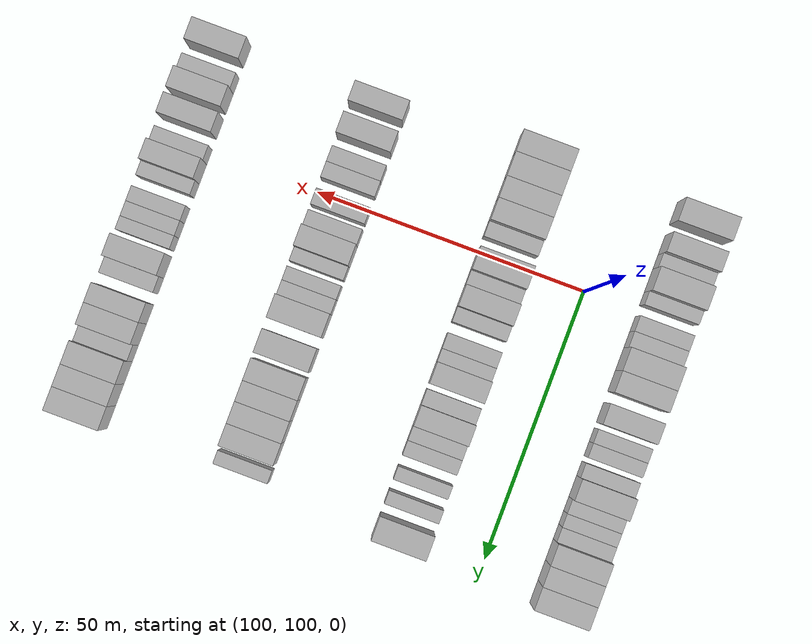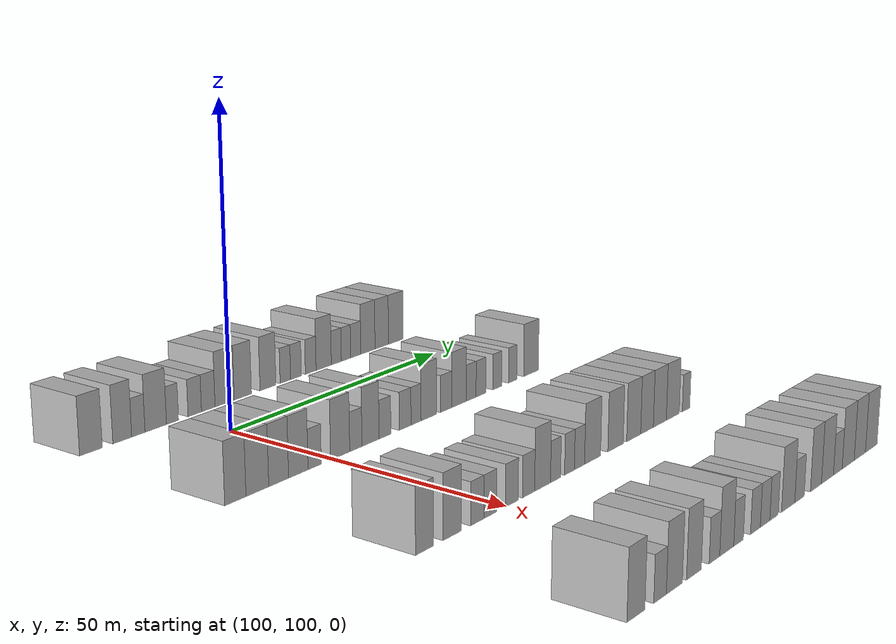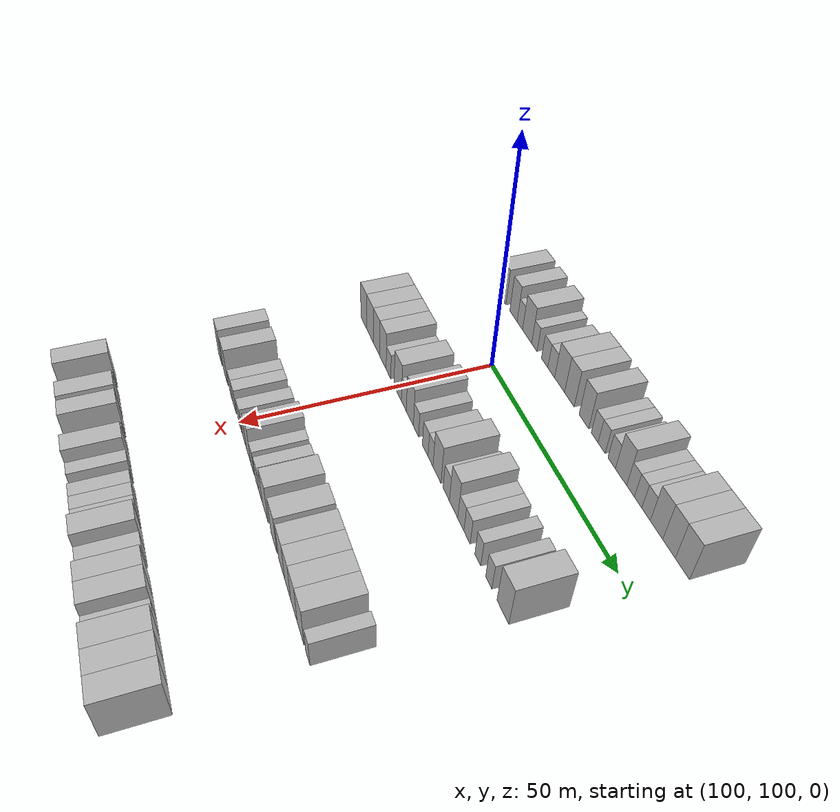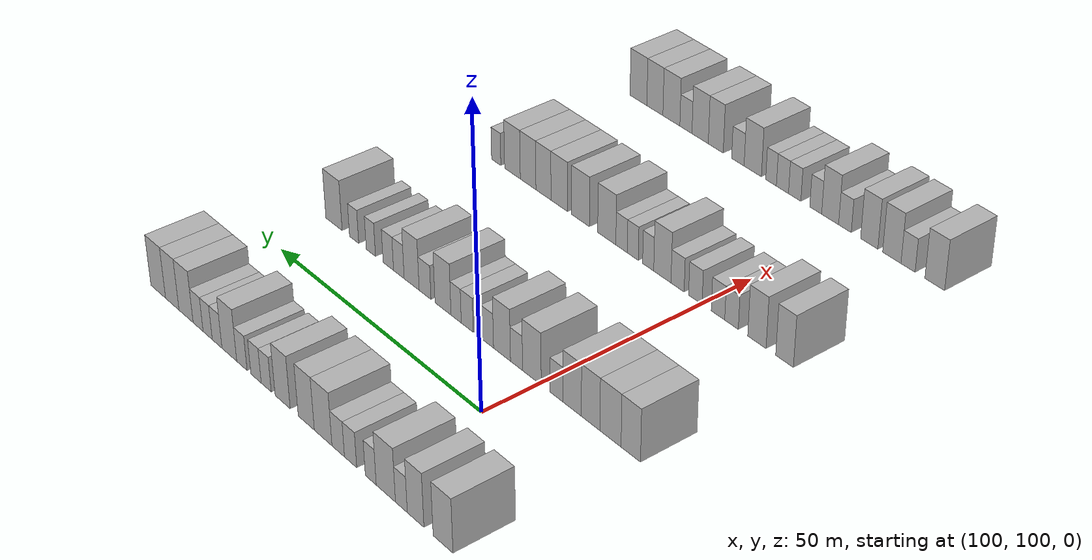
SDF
<sdf version="1.6">
 <world name="default">
  <model name="building_598">
   <static>1</static>
   <pose>85.0000 81.5797 0 0.000000 0.000000 0.000000</pose>
   <link name="link">
    <pose>0 0 4.50 0 0 0</pose>
    <collision name="collision"><geometry><box><size>10.0000 4.2613 9.0000</size></box></geometry></collision>
    <visual name="visual">
     <cast_shadows>0</cast_shadows>
     <geometry><box><size>10.0000 4.2613 9.0000</size></box></geometry>
     <material>
      <script>
       <uri>model://HANNAS_wall/materials/scripts</uri>
       <uri>model://HANNAS_wall/materials/textures</uri>
       <name>vrc/HANNAS_wall</name>
      </script>
     </material>
    </visual>
   </link>
  </model>
  <model name="building_599">
   <static>1</static>
   <pose>85.0000 87.5452 0 0.000000 0.000000 0.000000</pose>
   <link name="link">
    <pose>0 0 4.50 0 0 0</pose>
    <collision name="collision"><geometry><box><size>10.0000 3.6697 9.0000</size></box></geometry></collision>
    <visual name="visual">
     <cast_shadows>0</cast_shadows>
     <geometry><box><size>10.0000 3.6697 9.0000</size></box></geometry>
     <material>
      <script>
       <uri>model://HANNAS_wall/materials/scripts</uri>
       <uri>model://HANNAS_wall/materials/textures</uri>
       <name>vrc/HANNAS_wall</name>
      </script>
     </material>
    </visual>
   </link>
  </model>
  <model name="building_600">
   <static>1</static>
   <pose>85.0000 90.7050 0 0.000000 0.000000 0.000000</pose>
   <link name="link">
    <pose>0 0 3.00 0 0 0</pose>
    <collision name="collision"><geometry><box><size>10.0000 2.6497 6.0000</size></box></geometry></collision>
    <visual name="visual">
     <cast_shadows>0</cast_shadows>
     <geometry><box><size>10.0000 2.6497 6.0000</size></box></geometry>
     <material>
      <script>
       <uri>model://HANNAS_wall/materials/scripts</uri>
       <uri>model://HANNAS_wall/materials/textures</uri>
       <name>vrc/HANNAS_wall</name>
      </script>
     </material>
    </visual>
   </link>
  </model>
  <model name="building_601">
   <static>1</static>
   <pose>85.0000 94.2126 0 0.000000 0.000000 0.000000</pose>
   <link name="link">
    <pose>0 0 4.50 0 0 0</pose>
    <collision name="collision"><geometry><box><size>10.0000 4.3655 9.0000</size></box></geometry></collision>
    <visual name="visual">
     <cast_shadows>0</cast_shadows>
     <geometry><box><size>10.0000 4.3655 9.0000</size></box></geometry>
     <material>
      <script>
       <uri>model://HANNAS_wall/materials/scripts</uri>
       <uri>model://HANNAS_wall/materials/textures</uri>
       <name>vrc/HANNAS_wall</name>
      </script>
     </material>
    </visual>
   </link>
  </model>
  <model name="building_602">
   <static>1</static>
   <pose>85.0000 97.6465 0 0.000000 0.000000 0.000000</pose>
   <link name="link">
    <pose>0 0 3.00 0 0 0</pose>
    <collision name="collision"><geometry><box><size>10.0000 2.5023 6.0000</size></box></geometry></collision>
    <visual name="visual">
     <cast_shadows>0</cast_shadows>
     <geometry><box><size>10.0000 2.5023 6.0000</size></box></geometry>
     <material>
      <script>
       <uri>model://HANNAS_wall/materials/scripts</uri>
       <uri>model://HANNAS_wall/materials/textures</uri>
       <name>vrc/HANNAS_wall</name>
      </script>
     </material>
    </visual>
   </link>
  </model>
  <model name="building_603">
   <static>1</static>
   <pose>85.0000 102.3369 0 0.000000 0.000000 0.000000</pose>
   <link name="link">
    <pose>0 0 3.00 0 0 0</pose>
    <collision name="collision"><geometry><box><size>10.0000 2.8786 6.0000</size></box></geometry></collision>
    <visual name="visual">
     <cast_shadows>0</cast_shadows>
     <geometry><box><size>10.0000 2.8786 6.0000</size></box></geometry>
     <material>
      <script>
       <uri>model://HANNAS_wall/materials/scripts</uri>
       <uri>model://HANNAS_wall/materials/textures</uri>
       <name>vrc/HANNAS_wall</name>
      </script>
     </material>
    </visual>
   </link>
  </model>
  <model name="building_604">
   <static>1</static>
   <pose>85.0000 105.2574 0 0.000000 0.000000 0.000000</pose>
   <link name="link">
    <pose>0 0 3.00 0 0 0</pose>
    <collision name="collision"><geometry><box><size>10.0000 2.9626 6.0000</size></box></geometry></collision>
    <visual name="visual">
     <cast_shadows>0</cast_shadows>
     <geometry><box><size>10.0000 2.9626 6.0000</size></box></geometry>
     <material>
      <script>
       <uri>model://HANNAS_wall/materials/scripts</uri>
       <uri>model://HANNAS_wall/materials/textures</uri>
       <name>vrc/HANNAS_wall</name>
      </script>
     </material>
    </visual>
   </link>
  </model>
  <model name="building_605">
   <static>1</static>
   <pose>85.0000 108.8717 0 0.000000 0.000000 0.000000</pose>
   <link name="link">
    <pose>0 0 4.50 0 0 0</pose>
    <collision name="collision"><geometry><box><size>10.0000 4.2658 9.0000</size></box></geometry></collision>
    <visual name="visual">
     <cast_shadows>0</cast_shadows>
     <geometry><box><size>10.0000 4.2658 9.0000</size></box></geometry>
     <material>
      <script>
       <uri>model://HANNAS_wall/materials/scripts</uri>
       <uri>model://HANNAS_wall/materials/textures</uri>
       <name>vrc/HANNAS_wall</name>
      </script>
     </material>
    </visual>
   </link>
  </model>
  <model name="building_606">
   <static>1</static>
   <pose>85.0000 112.9769 0 0.000000 0.000000 0.000000</pose>
   <link name="link">
    <pose>0 0 4.50 0 0 0</pose>
    <collision name="collision"><geometry><box><size>10.0000 3.9446 9.0000</size></box></geometry></collision>
    <visual name="visual">
     <cast_shadows>0</cast_shadows>
     <geometry><box><size>10.0000 3.9446 9.0000</size></box></geometry>
     <material>
      <script>
       <uri>model://HANNAS_wall/materials/scripts</uri>
       <uri>model://HANNAS_wall/materials/textures</uri>
       <name>vrc/HANNAS_wall</name>
      </script>
     </material>
    </visual>
   </link>
  </model>
  <model name="building_607">
   <static>1</static>
   <pose>85.0000 118.8368 0 0.000000 0.000000 0.000000</pose>
   <link name="link">
    <pose>0 0 4.50 0 0 0</pose>
    <collision name="collision"><geometry><box><size>10.0000 3.7753 9.0000</size></box></geometry></collision>
    <visual name="visual">
     <cast_shadows>0</cast_shadows>
     <geometry><box><size>10.0000 3.7753 9.0000</size></box></geometry>
     <material>
      <script>
       <uri>model://HANNAS_wall/materials/scripts</uri>
       <uri>model://HANNAS_wall/materials/textures</uri>
       <name>vrc/HANNAS_wall</name>
      </script>
     </material>
    </visual>
   </link>
  </model>
  <model name="building_608">
   <static>1</static>
   <pose>85.0000 123.0049 0 0.000000 0.000000 0.000000</pose>
   <link name="link">
    <pose>0 0 3.00 0 0 0</pose>
    <collision name="collision"><geometry><box><size>10.0000 2.5608 6.0000</size></box></geometry></collision>
    <visual name="visual">
     <cast_shadows>0</cast_shadows>
     <geometry><box><size>10.0000 2.5608 6.0000</size></box></geometry>
     <material>
      <script>
       <uri>model://HANNAS_wall/materials/scripts</uri>
       <uri>model://HANNAS_wall/materials/textures</uri>
       <name>vrc/HANNAS_wall</name>
      </script>
     </material>
    </visual>
   </link>
  </model>
  <model name="building_609">
   <static>1</static>
   <pose>85.0000 125.6137 0 0.000000 0.000000 0.000000</pose>
   <link name="link">
    <pose>0 0 3.00 0 0 0</pose>
    <collision name="collision"><geometry><box><size>10.0000 2.6568 6.0000</size></box></geometry></collision>
    <visual name="visual">
     <cast_shadows>0</cast_shadows>
     <geometry><box><size>10.0000 2.6568 6.0000</size></box></geometry>
     <material>
      <script>
       <uri>model://HANNAS_wall/materials/scripts</uri>
       <uri>model://HANNAS_wall/materials/textures</uri>
       <name>vrc/HANNAS_wall</name>
      </script>
     </material>
    </visual>
   </link>
  </model>
  <model name="building_610">
   <static>1</static>
   <pose>85.0000 129.2906 0 0.000000 0.000000 0.000000</pose>
   <link name="link">
    <pose>0 0 3.00 0 0 0</pose>
    <collision name="collision"><geometry><box><size>10.0000 2.6970 6.0000</size></box></geometry></collision>
    <visual name="visual">
     <cast_shadows>0</cast_shadows>
     <geometry><box><size>10.0000 2.6970 6.0000</size></box></geometry>
     <material>
      <script>
       <uri>model://HANNAS_wall/materials/scripts</uri>
       <uri>model://HANNAS_wall/materials/textures</uri>
       <name>vrc/HANNAS_wall</name>
      </script>
     </material>
    </visual>
   </link>
  </model>
  <model name="building_611">
   <static>1</static>
   <pose>85.0000 132.6021 0 0.000000 0.000000 0.000000</pose>
   <link name="link">
    <pose>0 0 4.50 0 0 0</pose>
    <collision name="collision"><geometry><box><size>10.0000 3.9261 9.0000</size></box></geometry></collision>
    <visual name="visual">
     <cast_shadows>0</cast_shadows>
     <geometry><box><size>10.0000 3.9261 9.0000</size></box></geometry>
     <material>
      <script>
       <uri>model://HANNAS_wall/materials/scripts</uri>
       <uri>model://HANNAS_wall/materials/textures</uri>
       <name>vrc/HANNAS_wall</name>
      </script>
     </material>
    </visual>
   </link>
  </model>
  <model name="building_612">
   <static>1</static>
   <pose>85.0000 135.8722 0 0.000000 0.000000 0.000000</pose>
   <link name="link">
    <pose>0 0 3.00 0 0 0</pose>
    <collision name="collision"><geometry><box><size>10.0000 2.6141 6.0000</size></box></geometry></collision>
    <visual name="visual">
     <cast_shadows>0</cast_shadows>
     <geometry><box><size>10.0000 2.6141 6.0000</size></box></geometry>
     <material>
      <script>
       <uri>model://HANNAS_wall/materials/scripts</uri>
       <uri>model://HANNAS_wall/materials/textures</uri>
       <name>vrc/HANNAS_wall</name>
      </script>
     </material>
    </visual>
   </link>
  </model>
  <model name="building_613">
   <static>1</static>
   <pose>85.0000 138.4217 0 0.000000 0.000000 0.000000</pose>
   <link name="link">
    <pose>0 0 3.00 0 0 0</pose>
    <collision name="collision"><geometry><box><size>10.0000 2.4850 6.0000</size></box></geometry></collision>
    <visual name="visual">
     <cast_shadows>0</cast_shadows>
     <geometry><box><size>10.0000 2.4850 6.0000</size></box></geometry>
     <material>
      <script>
       <uri>model://HANNAS_wall/materials/scripts</uri>
       <uri>model://HANNAS_wall/materials/textures</uri>
       <name>vrc/HANNAS_wall</name>
      </script>
     </material>
    </visual>
   </link>
  </model>
  <model name="building_614">
   <static>1</static>
   <pose>85.0000 141.0297 0 0.000000 0.000000 0.000000</pose>
   <link name="link">
    <pose>0 0 3.00 0 0 0</pose>
    <collision name="collision"><geometry><box><size>10.0000 2.7310 6.0000</size></box></geometry></collision>
    <visual name="visual">
     <cast_shadows>0</cast_shadows>
     <geometry><box><size>10.0000 2.7310 6.0000</size></box></geometry>
     <material>
      <script>
       <uri>model://HANNAS_wall/materials/scripts</uri>
       <uri>model://HANNAS_wall/materials/textures</uri>
       <name>vrc/HANNAS_wall</name>
      </script>
     </material>
    </visual>
   </link>
  </model>
  <model name="building_615">
   <static>1</static>
   <pose>85.0000 144.3605 0 0.000000 0.000000 0.000000</pose>
   <link name="link">
    <pose>0 0 4.50 0 0 0</pose>
    <collision name="collision"><geometry><box><size>10.0000 3.9305 9.0000</size></box></geometry></collision>
    <visual name="visual">
     <cast_shadows>0</cast_shadows>
     <geometry><box><size>10.0000 3.9305 9.0000</size></box></geometry>
     <material>
      <script>
       <uri>model://HANNAS_wall/materials/scripts</uri>
       <uri>model://HANNAS_wall/materials/textures</uri>
       <name>vrc/HANNAS_wall</name>
      </script>
     </material>
    </visual>
   </link>
  </model>
  <model name="building_616">
   <static>1</static>
   <pose>85.0000 148.2190 0 0.000000 0.000000 0.000000</pose>
   <link name="link">
    <pose>0 0 4.50 0 0 0</pose>
    <collision name="collision"><geometry><box><size>10.0000 3.7866 9.0000</size></box></geometry></collision>
    <visual name="visual">
     <cast_shadows>0</cast_shadows>
     <geometry><box><size>10.0000 3.7866 9.0000</size></box></geometry>
     <material>
      <script>
       <uri>model://HANNAS_wall/materials/scripts</uri>
       <uri>model://HANNAS_wall/materials/textures</uri>
       <name>vrc/HANNAS_wall</name>
      </script>
     </material>
    </visual>
   </link>
  </model>
  <model name="building_617">
   <static>1</static>
   <pose>85.0000 152.2054 0 0.000000 0.000000 0.000000</pose>
   <link name="link">
    <pose>0 0 4.50 0 0 0</pose>
    <collision name="collision"><geometry><box><size>10.0000 4.1861 9.0000</size></box></geometry></collision>
    <visual name="visual">
     <cast_shadows>0</cast_shadows>
     <geometry><box><size>10.0000 4.1861 9.0000</size></box></geometry>
     <material>
      <script>
       <uri>model://HANNAS_wall/materials/scripts</uri>
       <uri>model://HANNAS_wall/materials/textures</uri>
       <name>vrc/HANNAS_wall</name>
      </script>
     </material>
    </visual>
   </link>
  </model>
  <model name="building_825">
   <static>1</static>
   <pose>115.0000 80.2220 0 0.000000 0.000000 0.000000</pose>
   <link name="link">
    <pose>0 0 4.50 0 0 0</pose>
    <collision name="collision"><geometry><box><size>10.0000 4.0269 9.0000</size></box></geometry></collision>
    <visual name="visual">
     <cast_shadows>0</cast_shadows>
     <geometry><box><size>10.0000 4.0269 9.0000</size></box></geometry>
     <material>
      <script>
       <uri>model://HANNAS_wall/materials/scripts</uri>
       <uri>model://HANNAS_wall/materials/textures</uri>
       <name>vrc/HANNAS_wall</name>
      </script>
     </material>
    </visual>
   </link>
  </model>
  <model name="building_826">
   <static>1</static>
   <pose>115.0000 84.4556 0 0.000000 0.000000 0.000000</pose>
   <link name="link">
    <pose>0 0 4.50 0 0 0</pose>
    <collision name="collision"><geometry><box><size>10.0000 4.4403 9.0000</size></box></geometry></collision>
    <visual name="visual">
     <cast_shadows>0</cast_shadows>
     <geometry><box><size>10.0000 4.4403 9.0000</size></box></geometry>
     <material>
      <script>
       <uri>model://HANNAS_wall/materials/scripts</uri>
       <uri>model://HANNAS_wall/materials/textures</uri>
       <name>vrc/HANNAS_wall</name>
      </script>
     </material>
    </visual>
   </link>
  </model>
  <model name="building_827">
   <static>1</static>
   <pose>115.0000 88.6708 0 0.000000 0.000000 0.000000</pose>
   <link name="link">
    <pose>0 0 4.50 0 0 0</pose>
    <collision name="collision"><geometry><box><size>10.0000 3.9900 9.0000</size></box></geometry></collision>
    <visual name="visual">
     <cast_shadows>0</cast_shadows>
     <geometry><box><size>10.0000 3.9900 9.0000</size></box></geometry>
     <material>
      <script>
       <uri>model://HANNAS_wall/materials/scripts</uri>
       <uri>model://HANNAS_wall/materials/textures</uri>
       <name>vrc/HANNAS_wall</name>
      </script>
     </material>
    </visual>
   </link>
  </model>
  <model name="building_828">
   <static>1</static>
   <pose>115.0000 92.6786 0 0.000000 0.000000 0.000000</pose>
   <link name="link">
    <pose>0 0 4.50 0 0 0</pose>
    <collision name="collision"><geometry><box><size>10.0000 4.0256 9.0000</size></box></geometry></collision>
    <visual name="visual">
     <cast_shadows>0</cast_shadows>
     <geometry><box><size>10.0000 4.0256 9.0000</size></box></geometry>
     <material>
      <script>
       <uri>model://HANNAS_wall/materials/scripts</uri>
       <uri>model://HANNAS_wall/materials/textures</uri>
       <name>vrc/HANNAS_wall</name>
      </script>
     </material>
    </visual>
   </link>
  </model>
  <model name="building_829">
   <static>1</static>
   <pose>115.0000 96.1047 0 0.000000 0.000000 0.000000</pose>
   <link name="link">
    <pose>0 0 3.00 0 0 0</pose>
    <collision name="collision"><geometry><box><size>10.0000 2.8265 6.0000</size></box></geometry></collision>
    <visual name="visual">
     <cast_shadows>0</cast_shadows>
     <geometry><box><size>10.0000 2.8265 6.0000</size></box></geometry>
     <material>
      <script>
       <uri>model://HANNAS_wall/materials/scripts</uri>
       <uri>model://HANNAS_wall/materials/textures</uri>
       <name>vrc/HANNAS_wall</name>
      </script>
     </material>
    </visual>
   </link>
  </model>
  <model name="building_830">
   <static>1</static>
   <pose>115.0000 101.6258 0 0.000000 0.000000 0.000000</pose>
   <link name="link">
    <pose>0 0 4.50 0 0 0</pose>
    <collision name="collision"><geometry><box><size>10.0000 4.2157 9.0000</size></box></geometry></collision>
    <visual name="visual">
     <cast_shadows>0</cast_shadows>
     <geometry><box><size>10.0000 4.2157 9.0000</size></box></geometry>
     <material>
      <script>
       <uri>model://HANNAS_wall/materials/scripts</uri>
       <uri>model://HANNAS_wall/materials/textures</uri>
       <name>vrc/HANNAS_wall</name>
      </script>
     </material>
    </visual>
   </link>
  </model>
  <model name="building_831">
   <static>1</static>
   <pose>115.0000 105.1204 0 0.000000 0.000000 0.000000</pose>
   <link name="link">
    <pose>0 0 3.00 0 0 0</pose>
    <collision name="collision"><geometry><box><size>10.0000 2.7734 6.0000</size></box></geometry></collision>
    <visual name="visual">
     <cast_shadows>0</cast_shadows>
     <geometry><box><size>10.0000 2.7734 6.0000</size></box></geometry>
     <material>
      <script>
       <uri>model://HANNAS_wall/materials/scripts</uri>
       <uri>model://HANNAS_wall/materials/textures</uri>
       <name>vrc/HANNAS_wall</name>
      </script>
     </material>
    </visual>
   </link>
  </model>
  <model name="building_832">
   <static>1</static>
   <pose>115.0000 108.4768 0 0.000000 0.000000 0.000000</pose>
   <link name="link">
    <pose>0 0 4.50 0 0 0</pose>
    <collision name="collision"><geometry><box><size>10.0000 3.9394 9.0000</size></box></geometry></collision>
    <visual name="visual">
     <cast_shadows>0</cast_shadows>
     <geometry><box><size>10.0000 3.9394 9.0000</size></box></geometry>
     <material>
      <script>
       <uri>model://HANNAS_wall/materials/scripts</uri>
       <uri>model://HANNAS_wall/materials/textures</uri>
       <name>vrc/HANNAS_wall</name>
      </script>
     </material>
    </visual>
   </link>
  </model>
  <model name="building_833">
   <static>1</static>
   <pose>115.0000 111.8412 0 0.000000 0.000000 0.000000</pose>
   <link name="link">
    <pose>0 0 3.00 0 0 0</pose>
    <collision name="collision"><geometry><box><size>10.0000 2.7894 6.0000</size></box></geometry></collision>
    <visual name="visual">
     <cast_shadows>0</cast_shadows>
     <geometry><box><size>10.0000 2.7894 6.0000</size></box></geometry>
     <material>
      <script>
       <uri>model://HANNAS_wall/materials/scripts</uri>
       <uri>model://HANNAS_wall/materials/textures</uri>
       <name>vrc/HANNAS_wall</name>
      </script>
     </material>
    </visual>
   </link>
  </model>
  <model name="building_834">
   <static>1</static>
   <pose>115.0000 116.6776 0 0.000000 0.000000 0.000000</pose>
   <link name="link">
    <pose>0 0 3.00 0 0 0</pose>
    <collision name="collision"><geometry><box><size>10.0000 2.8834 6.0000</size></box></geometry></collision>
    <visual name="visual">
     <cast_shadows>0</cast_shadows>
     <geometry><box><size>10.0000 2.8834 6.0000</size></box></geometry>
     <material>
      <script>
       <uri>model://HANNAS_wall/materials/scripts</uri>
       <uri>model://HANNAS_wall/materials/textures</uri>
       <name>vrc/HANNAS_wall</name>
      </script>
     </material>
    </visual>
   </link>
  </model>
  <model name="building_835">
   <static>1</static>
   <pose>115.0000 119.3603 0 0.000000 0.000000 0.000000</pose>
   <link name="link">
    <pose>0 0 3.00 0 0 0</pose>
    <collision name="collision"><geometry><box><size>10.0000 2.4820 6.0000</size></box></geometry></collision>
    <visual name="visual">
     <cast_shadows>0</cast_shadows>
     <geometry><box><size>10.0000 2.4820 6.0000</size></box></geometry>
     <material>
      <script>
       <uri>model://HANNAS_wall/materials/scripts</uri>
       <uri>model://HANNAS_wall/materials/textures</uri>
       <name>vrc/HANNAS_wall</name>
      </script>
     </material>
    </visual>
   </link>
  </model>
  <model name="building_836">
   <static>1</static>
   <pose>115.0000 122.5671 0 0.000000 0.000000 0.000000</pose>
   <link name="link">
    <pose>0 0 4.50 0 0 0</pose>
    <collision name="collision"><geometry><box><size>10.0000 3.9316 9.0000</size></box></geometry></collision>
    <visual name="visual">
     <cast_shadows>0</cast_shadows>
     <geometry><box><size>10.0000 3.9316 9.0000</size></box></geometry>
     <material>
      <script>
       <uri>model://HANNAS_wall/materials/scripts</uri>
       <uri>model://HANNAS_wall/materials/textures</uri>
       <name>vrc/HANNAS_wall</name>
      </script>
     </material>
    </visual>
   </link>
  </model>
  <model name="building_837">
   <static>1</static>
   <pose>115.0000 127.0074 0 0.000000 0.000000 0.000000</pose>
   <link name="link">
    <pose>0 0 3.00 0 0 0</pose>
    <collision name="collision"><geometry><box><size>10.0000 2.9489 6.0000</size></box></geometry></collision>
    <visual name="visual">
     <cast_shadows>0</cast_shadows>
     <geometry><box><size>10.0000 2.9489 6.0000</size></box></geometry>
     <material>
      <script>
       <uri>model://HANNAS_wall/materials/scripts</uri>
       <uri>model://HANNAS_wall/materials/textures</uri>
       <name>vrc/HANNAS_wall</name>
      </script>
     </material>
    </visual>
   </link>
  </model>
  <model name="building_838">
   <static>1</static>
   <pose>115.0000 130.3793 0 0.000000 0.000000 0.000000</pose>
   <link name="link">
    <pose>0 0 4.50 0 0 0</pose>
    <collision name="collision"><geometry><box><size>10.0000 3.7949 9.0000</size></box></geometry></collision>
    <visual name="visual">
     <cast_shadows>0</cast_shadows>
     <geometry><box><size>10.0000 3.7949 9.0000</size></box></geometry>
     <material>
      <script>
       <uri>model://HANNAS_wall/materials/scripts</uri>
       <uri>model://HANNAS_wall/materials/textures</uri>
       <name>vrc/HANNAS_wall</name>
      </script>
     </material>
    </visual>
   </link>
  </model>
  <model name="building_839">
   <static>1</static>
   <pose>115.0000 133.6348 0 0.000000 0.000000 0.000000</pose>
   <link name="link">
    <pose>0 0 3.00 0 0 0</pose>
    <collision name="collision"><geometry><box><size>10.0000 2.7161 6.0000</size></box></geometry></collision>
    <visual name="visual">
     <cast_shadows>0</cast_shadows>
     <geometry><box><size>10.0000 2.7161 6.0000</size></box></geometry>
     <material>
      <script>
       <uri>model://HANNAS_wall/materials/scripts</uri>
       <uri>model://HANNAS_wall/materials/textures</uri>
       <name>vrc/HANNAS_wall</name>
      </script>
     </material>
    </visual>
   </link>
  </model>
  <model name="building_840">
   <static>1</static>
   <pose>115.0000 136.3406 0 0.000000 0.000000 0.000000</pose>
   <link name="link">
    <pose>0 0 3.00 0 0 0</pose>
    <collision name="collision"><geometry><box><size>10.0000 2.6956 6.0000</size></box></geometry></collision>
    <visual name="visual">
     <cast_shadows>0</cast_shadows>
     <geometry><box><size>10.0000 2.6956 6.0000</size></box></geometry>
     <material>
      <script>
       <uri>model://HANNAS_wall/materials/scripts</uri>
       <uri>model://HANNAS_wall/materials/textures</uri>
       <name>vrc/HANNAS_wall</name>
      </script>
     </material>
    </visual>
   </link>
  </model>
  <model name="building_841">
   <static>1</static>
   <pose>115.0000 140.9001 0 0.000000 0.000000 0.000000</pose>
   <link name="link">
    <pose>0 0 3.00 0 0 0</pose>
    <collision name="collision"><geometry><box><size>10.0000 2.4234 6.0000</size></box></geometry></collision>
    <visual name="visual">
     <cast_shadows>0</cast_shadows>
     <geometry><box><size>10.0000 2.4234 6.0000</size></box></geometry>
     <material>
      <script>
       <uri>model://HANNAS_wall/materials/scripts</uri>
       <uri>model://HANNAS_wall/materials/textures</uri>
       <name>vrc/HANNAS_wall</name>
      </script>
     </material>
    </visual>
   </link>
  </model>
  <model name="building_842">
   <static>1</static>
   <pose>115.0000 145.3336 0 0.000000 0.000000 0.000000</pose>
   <link name="link">
    <pose>0 0 3.00 0 0 0</pose>
    <collision name="collision"><geometry><box><size>10.0000 2.4436 6.0000</size></box></geometry></collision>
    <visual name="visual">
     <cast_shadows>0</cast_shadows>
     <geometry><box><size>10.0000 2.4436 6.0000</size></box></geometry>
     <material>
      <script>
       <uri>model://HANNAS_wall/materials/scripts</uri>
       <uri>model://HANNAS_wall/materials/textures</uri>
       <name>vrc/HANNAS_wall</name>
      </script>
     </material>
    </visual>
   </link>
  </model>
  <model name="building_843">
   <static>1</static>
   <pose>115.0000 150.7650 0 0.000000 0.000000 0.000000</pose>
   <link name="link">
    <pose>0 0 4.50 0 0 0</pose>
    <collision name="collision"><geometry><box><size>10.0000 4.4191 9.0000</size></box></geometry></collision>
    <visual name="visual">
     <cast_shadows>0</cast_shadows>
     <geometry><box><size>10.0000 4.4191 9.0000</size></box></geometry>
     <material>
      <script>
       <uri>model://HANNAS_wall/materials/scripts</uri>
       <uri>model://HANNAS_wall/materials/textures</uri>
       <name>vrc/HANNAS_wall</name>
      </script>
     </material>
    </visual>
   </link>
  </model>
  <model name="building_1066">
   <static>1</static>
   <pose>145.0000 82.3056 0 0.000000 0.000000 0.000000</pose>
   <link name="link">
    <pose>0 0 4.50 0 0 0</pose>
    <collision name="collision"><geometry><box><size>10.0000 3.6318 9.0000</size></box></geometry></collision>
    <visual name="visual">
     <cast_shadows>0</cast_shadows>
     <geometry><box><size>10.0000 3.6318 9.0000</size></box></geometry>
     <material>
      <script>
       <uri>model://HANNAS_wall/materials/scripts</uri>
       <uri>model://HANNAS_wall/materials/textures</uri>
       <name>vrc/HANNAS_wall</name>
      </script>
     </material>
    </visual>
   </link>
  </model>
  <model name="building_1067">
   <static>1</static>
   <pose>145.0000 88.0437 0 0.000000 0.000000 0.000000</pose>
   <link name="link">
    <pose>0 0 4.50 0 0 0</pose>
    <collision name="collision"><geometry><box><size>10.0000 3.8445 9.0000</size></box></geometry></collision>
    <visual name="visual">
     <cast_shadows>0</cast_shadows>
     <geometry><box><size>10.0000 3.8445 9.0000</size></box></geometry>
     <material>
      <script>
       <uri>model://HANNAS_wall/materials/scripts</uri>
       <uri>model://HANNAS_wall/materials/textures</uri>
       <name>vrc/HANNAS_wall</name>
      </script>
     </material>
    </visual>
   </link>
  </model>
  <model name="building_1068">
   <static>1</static>
   <pose>145.0000 93.4181 0 0.000000 0.000000 0.000000</pose>
   <link name="link">
    <pose>0 0 3.00 0 0 0</pose>
    <collision name="collision"><geometry><box><size>10.0000 2.9042 6.0000</size></box></geometry></collision>
    <visual name="visual">
     <cast_shadows>0</cast_shadows>
     <geometry><box><size>10.0000 2.9042 6.0000</size></box></geometry>
     <material>
      <script>
       <uri>model://HANNAS_wall/materials/scripts</uri>
       <uri>model://HANNAS_wall/materials/textures</uri>
       <name>vrc/HANNAS_wall</name>
      </script>
     </material>
    </visual>
   </link>
  </model>
  <model name="building_1069">
   <static>1</static>
   <pose>145.0000 96.3291 0 0.000000 0.000000 0.000000</pose>
   <link name="link">
    <pose>0 0 3.00 0 0 0</pose>
    <collision name="collision"><geometry><box><size>10.0000 2.9180 6.0000</size></box></geometry></collision>
    <visual name="visual">
     <cast_shadows>0</cast_shadows>
     <geometry><box><size>10.0000 2.9180 6.0000</size></box></geometry>
     <material>
      <script>
       <uri>model://HANNAS_wall/materials/scripts</uri>
       <uri>model://HANNAS_wall/materials/textures</uri>
       <name>vrc/HANNAS_wall</name>
      </script>
     </material>
    </visual>
   </link>
  </model>
  <model name="building_1070">
   <static>1</static>
   <pose>145.0000 101.2747 0 0.000000 0.000000 0.000000</pose>
   <link name="link">
    <pose>0 0 3.00 0 0 0</pose>
    <collision name="collision"><geometry><box><size>10.0000 2.9730 6.0000</size></box></geometry></collision>
    <visual name="visual">
     <cast_shadows>0</cast_shadows>
     <geometry><box><size>10.0000 2.9730 6.0000</size></box></geometry>
     <material>
      <script>
       <uri>model://HANNAS_wall/materials/scripts</uri>
       <uri>model://HANNAS_wall/materials/textures</uri>
       <name>vrc/HANNAS_wall</name>
      </script>
     </material>
    </visual>
   </link>
  </model>
  <model name="building_1071">
   <static>1</static>
   <pose>145.0000 105.2339 0 0.000000 0.000000 0.000000</pose>
   <link name="link">
    <pose>0 0 3.00 0 0 0</pose>
    <collision name="collision"><geometry><box><size>10.0000 2.9453 6.0000</size></box></geometry></collision>
    <visual name="visual">
     <cast_shadows>0</cast_shadows>
     <geometry><box><size>10.0000 2.9453 6.0000</size></box></geometry>
     <material>
      <script>
       <uri>model://HANNAS_wall/materials/scripts</uri>
       <uri>model://HANNAS_wall/materials/textures</uri>
       <name>vrc/HANNAS_wall</name>
      </script>
     </material>
    </visual>
   </link>
  </model>
  <model name="building_1072">
   <static>1</static>
   <pose>145.0000 108.6669 0 0.000000 0.000000 0.000000</pose>
   <link name="link">
    <pose>0 0 4.50 0 0 0</pose>
    <collision name="collision"><geometry><box><size>10.0000 3.9209 9.0000</size></box></geometry></collision>
    <visual name="visual">
     <cast_shadows>0</cast_shadows>
     <geometry><box><size>10.0000 3.9209 9.0000</size></box></geometry>
     <material>
      <script>
       <uri>model://HANNAS_wall/materials/scripts</uri>
       <uri>model://HANNAS_wall/materials/textures</uri>
       <name>vrc/HANNAS_wall</name>
      </script>
     </material>
    </visual>
   </link>
  </model>
  <model name="building_1073">
   <static>1</static>
   <pose>145.0000 111.9006 0 0.000000 0.000000 0.000000</pose>
   <link name="link">
    <pose>0 0 3.00 0 0 0</pose>
    <collision name="collision"><geometry><box><size>10.0000 2.5465 6.0000</size></box></geometry></collision>
    <visual name="visual">
     <cast_shadows>0</cast_shadows>
     <geometry><box><size>10.0000 2.5465 6.0000</size></box></geometry>
     <material>
      <script>
       <uri>model://HANNAS_wall/materials/scripts</uri>
       <uri>model://HANNAS_wall/materials/textures</uri>
       <name>vrc/HANNAS_wall</name>
      </script>
     </material>
    </visual>
   </link>
  </model>
  <model name="building_1074">
   <static>1</static>
   <pose>145.0000 115.4510 0 0.000000 0.000000 0.000000</pose>
   <link name="link">
    <pose>0 0 3.00 0 0 0</pose>
    <collision name="collision"><geometry><box><size>10.0000 2.5542 6.0000</size></box></geometry></collision>
    <visual name="visual">
     <cast_shadows>0</cast_shadows>
     <geometry><box><size>10.0000 2.5542 6.0000</size></box></geometry>
     <material>
      <script>
       <uri>model://HANNAS_wall/materials/scripts</uri>
       <uri>model://HANNAS_wall/materials/textures</uri>
       <name>vrc/HANNAS_wall</name>
      </script>
     </material>
    </visual>
   </link>
  </model>
  <model name="building_1075">
   <static>1</static>
   <pose>145.0000 118.0728 0 0.000000 0.000000 0.000000</pose>
   <link name="link">
    <pose>0 0 3.00 0 0 0</pose>
    <collision name="collision"><geometry><box><size>10.0000 2.6894 6.0000</size></box></geometry></collision>
    <visual name="visual">
     <cast_shadows>0</cast_shadows>
     <geometry><box><size>10.0000 2.6894 6.0000</size></box></geometry>
     <material>
      <script>
       <uri>model://HANNAS_wall/materials/scripts</uri>
       <uri>model://HANNAS_wall/materials/textures</uri>
       <name>vrc/HANNAS_wall</name>
      </script>
     </material>
    </visual>
   </link>
  </model>
  <model name="building_1076">
   <static>1</static>
   <pose>145.0000 121.5782 0 0.000000 0.000000 0.000000</pose>
   <link name="link">
    <pose>0 0 4.50 0 0 0</pose>
    <collision name="collision"><geometry><box><size>10.0000 4.3215 9.0000</size></box></geometry></collision>
    <visual name="visual">
     <cast_shadows>0</cast_shadows>
     <geometry><box><size>10.0000 4.3215 9.0000</size></box></geometry>
     <material>
      <script>
       <uri>model://HANNAS_wall/materials/scripts</uri>
       <uri>model://HANNAS_wall/materials/textures</uri>
       <name>vrc/HANNAS_wall</name>
      </script>
     </material>
    </visual>
   </link>
  </model>
  <model name="building_1077">
   <static>1</static>
   <pose>145.0000 127.9053 0 0.000000 0.000000 0.000000</pose>
   <link name="link">
    <pose>0 0 4.50 0 0 0</pose>
    <collision name="collision"><geometry><box><size>10.0000 4.3326 9.0000</size></box></geometry></collision>
    <visual name="visual">
     <cast_shadows>0</cast_shadows>
     <geometry><box><size>10.0000 4.3326 9.0000</size></box></geometry>
     <material>
      <script>
       <uri>model://HANNAS_wall/materials/scripts</uri>
       <uri>model://HANNAS_wall/materials/textures</uri>
       <name>vrc/HANNAS_wall</name>
      </script>
     </material>
    </visual>
   </link>
  </model>
  <model name="building_1078">
   <static>1</static>
   <pose>145.0000 133.1194 0 0.000000 0.000000 0.000000</pose>
   <link name="link">
    <pose>0 0 4.50 0 0 0</pose>
    <collision name="collision"><geometry><box><size>10.0000 4.0957 9.0000</size></box></geometry></collision>
    <visual name="visual">
     <cast_shadows>0</cast_shadows>
     <geometry><box><size>10.0000 4.0957 9.0000</size></box></geometry>
     <material>
      <script>
       <uri>model://HANNAS_wall/materials/scripts</uri>
       <uri>model://HANNAS_wall/materials/textures</uri>
       <name>vrc/HANNAS_wall</name>
      </script>
     </material>
    </visual>
   </link>
  </model>
  <model name="building_1079">
   <static>1</static>
   <pose>145.0000 137.0694 0 0.000000 0.000000 0.000000</pose>
   <link name="link">
    <pose>0 0 4.50 0 0 0</pose>
    <collision name="collision"><geometry><box><size>10.0000 3.8044 9.0000</size></box></geometry></collision>
    <visual name="visual">
     <cast_shadows>0</cast_shadows>
     <geometry><box><size>10.0000 3.8044 9.0000</size></box></geometry>
     <material>
      <script>
       <uri>model://HANNAS_wall/materials/scripts</uri>
       <uri>model://HANNAS_wall/materials/textures</uri>
       <name>vrc/HANNAS_wall</name>
      </script>
     </material>
    </visual>
   </link>
  </model>
  <model name="building_1080">
   <static>1</static>
   <pose>145.0000 140.9649 0 0.000000 0.000000 0.000000</pose>
   <link name="link">
    <pose>0 0 4.50 0 0 0</pose>
    <collision name="collision"><geometry><box><size>10.0000 3.9865 9.0000</size></box></geometry></collision>
    <visual name="visual">
     <cast_shadows>0</cast_shadows>
     <geometry><box><size>10.0000 3.9865 9.0000</size></box></geometry>
     <material>
      <script>
       <uri>model://HANNAS_wall/materials/scripts</uri>
       <uri>model://HANNAS_wall/materials/textures</uri>
       <name>vrc/HANNAS_wall</name>
      </script>
     </material>
    </visual>
   </link>
  </model>
  <model name="building_1081">
   <static>1</static>
   <pose>145.0000 144.9850 0 0.000000 0.000000 0.000000</pose>
   <link name="link">
    <pose>0 0 4.50 0 0 0</pose>
    <collision name="collision"><geometry><box><size>10.0000 4.0537 9.0000</size></box></geometry></collision>
    <visual name="visual">
     <cast_shadows>0</cast_shadows>
     <geometry><box><size>10.0000 4.0537 9.0000</size></box></geometry>
     <material>
      <script>
       <uri>model://HANNAS_wall/materials/scripts</uri>
       <uri>model://HANNAS_wall/materials/textures</uri>
       <name>vrc/HANNAS_wall</name>
      </script>
     </material>
    </visual>
   </link>
  </model>
  <model name="building_1082">
   <static>1</static>
   <pose>145.0000 149.2208 0 0.000000 0.000000 0.000000</pose>
   <link name="link">
    <pose>0 0 3.00 0 0 0</pose>
    <collision name="collision"><geometry><box><size>10.0000 2.4180 6.0000</size></box></geometry></collision>
    <visual name="visual">
     <cast_shadows>0</cast_shadows>
     <geometry><box><size>10.0000 2.4180 6.0000</size></box></geometry>
     <material>
      <script>
       <uri>model://HANNAS_wall/materials/scripts</uri>
       <uri>model://HANNAS_wall/materials/textures</uri>
       <name>vrc/HANNAS_wall</name>
      </script>
     </material>
    </visual>
   </link>
  </model>
  <model name="building_1292">
   <static>1</static>
   <pose>175.0000 82.0363 0 0.000000 0.000000 0.000000</pose>
   <link name="link">
    <pose>0 0 4.50 0 0 0</pose>
    <collision name="collision"><geometry><box><size>10.0000 3.9995 9.0000</size></box></geometry></collision>
    <visual name="visual">
     <cast_shadows>0</cast_shadows>
     <geometry><box><size>10.0000 3.9995 9.0000</size></box></geometry>
     <material>
      <script>
       <uri>model://HANNAS_wall/materials/scripts</uri>
       <uri>model://HANNAS_wall/materials/textures</uri>
       <name>vrc/HANNAS_wall</name>
      </script>
     </material>
    </visual>
   </link>
  </model>
  <model name="building_1293">
   <static>1</static>
   <pose>175.0000 87.4960 0 0.000000 0.000000 0.000000</pose>
   <link name="link">
    <pose>0 0 3.00 0 0 0</pose>
    <collision name="collision"><geometry><box><size>10.0000 2.9200 6.0000</size></box></geometry></collision>
    <visual name="visual">
     <cast_shadows>0</cast_shadows>
     <geometry><box><size>10.0000 2.9200 6.0000</size></box></geometry>
     <material>
      <script>
       <uri>model://HANNAS_wall/materials/scripts</uri>
       <uri>model://HANNAS_wall/materials/textures</uri>
       <name>vrc/HANNAS_wall</name>
      </script>
     </material>
    </visual>
   </link>
  </model>
  <model name="building_1294">
   <static>1</static>
   <pose>175.0000 90.8773 0 0.000000 0.000000 0.000000</pose>
   <link name="link">
    <pose>0 0 4.50 0 0 0</pose>
    <collision name="collision"><geometry><box><size>10.0000 3.8427 9.0000</size></box></geometry></collision>
    <visual name="visual">
     <cast_shadows>0</cast_shadows>
     <geometry><box><size>10.0000 3.8427 9.0000</size></box></geometry>
     <material>
      <script>
       <uri>model://HANNAS_wall/materials/scripts</uri>
       <uri>model://HANNAS_wall/materials/textures</uri>
       <name>vrc/HANNAS_wall</name>
      </script>
     </material>
    </visual>
   </link>
  </model>
  <model name="building_1295">
   <static>1</static>
   <pose>175.0000 95.6383 0 0.000000 0.000000 0.000000</pose>
   <link name="link">
    <pose>0 0 4.50 0 0 0</pose>
    <collision name="collision"><geometry><box><size>10.0000 3.6792 9.0000</size></box></geometry></collision>
    <visual name="visual">
     <cast_shadows>0</cast_shadows>
     <geometry><box><size>10.0000 3.6792 9.0000</size></box></geometry>
     <material>
      <script>
       <uri>model://HANNAS_wall/materials/scripts</uri>
       <uri>model://HANNAS_wall/materials/textures</uri>
       <name>vrc/HANNAS_wall</name>
      </script>
     </material>
    </visual>
   </link>
  </model>
  <model name="building_1296">
   <static>1</static>
   <pose>175.0000 100.8546 0 0.000000 0.000000 0.000000</pose>
   <link name="link">
    <pose>0 0 3.00 0 0 0</pose>
    <collision name="collision"><geometry><box><size>10.0000 2.7534 6.0000</size></box></geometry></collision>
    <visual name="visual">
     <cast_shadows>0</cast_shadows>
     <geometry><box><size>10.0000 2.7534 6.0000</size></box></geometry>
     <material>
      <script>
       <uri>model://HANNAS_wall/materials/scripts</uri>
       <uri>model://HANNAS_wall/materials/textures</uri>
       <name>vrc/HANNAS_wall</name>
      </script>
     </material>
    </visual>
   </link>
  </model>
  <model name="building_1297">
   <static>1</static>
   <pose>175.0000 104.0953 0 0.000000 0.000000 0.000000</pose>
   <link name="link">
    <pose>0 0 4.50 0 0 0</pose>
    <collision name="collision"><geometry><box><size>10.0000 3.7280 9.0000</size></box></geometry></collision>
    <visual name="visual">
     <cast_shadows>0</cast_shadows>
     <geometry><box><size>10.0000 3.7280 9.0000</size></box></geometry>
     <material>
      <script>
       <uri>model://HANNAS_wall/materials/scripts</uri>
       <uri>model://HANNAS_wall/materials/textures</uri>
       <name>vrc/HANNAS_wall</name>
      </script>
     </material>
    </visual>
   </link>
  </model>
  <model name="building_1298">
   <static>1</static>
   <pose>175.0000 107.2746 0 0.000000 0.000000 0.000000</pose>
   <link name="link">
    <pose>0 0 3.00 0 0 0</pose>
    <collision name="collision"><geometry><box><size>10.0000 2.6306 6.0000</size></box></geometry></collision>
    <visual name="visual">
     <cast_shadows>0</cast_shadows>
     <geometry><box><size>10.0000 2.6306 6.0000</size></box></geometry>
     <material>
      <script>
       <uri>model://HANNAS_wall/materials/scripts</uri>
       <uri>model://HANNAS_wall/materials/textures</uri>
       <name>vrc/HANNAS_wall</name>
      </script>
     </material>
    </visual>
   </link>
  </model>
  <model name="building_1299">
   <static>1</static>
   <pose>175.0000 111.9841 0 0.000000 0.000000 0.000000</pose>
   <link name="link">
    <pose>0 0 3.00 0 0 0</pose>
    <collision name="collision"><geometry><box><size>10.0000 2.7886 6.0000</size></box></geometry></collision>
    <visual name="visual">
     <cast_shadows>0</cast_shadows>
     <geometry><box><size>10.0000 2.7886 6.0000</size></box></geometry>
     <material>
      <script>
       <uri>model://HANNAS_wall/materials/scripts</uri>
       <uri>model://HANNAS_wall/materials/textures</uri>
       <name>vrc/HANNAS_wall</name>
      </script>
     </material>
    </visual>
   </link>
  </model>
  <model name="building_1300">
   <static>1</static>
   <pose>175.0000 114.7613 0 0.000000 0.000000 0.000000</pose>
   <link name="link">
    <pose>0 0 3.00 0 0 0</pose>
    <collision name="collision"><geometry><box><size>10.0000 2.7658 6.0000</size></box></geometry></collision>
    <visual name="visual">
     <cast_shadows>0</cast_shadows>
     <geometry><box><size>10.0000 2.7658 6.0000</size></box></geometry>
     <material>
      <script>
       <uri>model://HANNAS_wall/materials/scripts</uri>
       <uri>model://HANNAS_wall/materials/textures</uri>
       <name>vrc/HANNAS_wall</name>
      </script>
     </material>
    </visual>
   </link>
  </model>
  <model name="building_1301">
   <static>1</static>
   <pose>175.0000 117.3714 0 0.000000 0.000000 0.000000</pose>
   <link name="link">
    <pose>0 0 3.00 0 0 0</pose>
    <collision name="collision"><geometry><box><size>10.0000 2.4546 6.0000</size></box></geometry></collision>
    <visual name="visual">
     <cast_shadows>0</cast_shadows>
     <geometry><box><size>10.0000 2.4546 6.0000</size></box></geometry>
     <material>
      <script>
       <uri>model://HANNAS_wall/materials/scripts</uri>
       <uri>model://HANNAS_wall/materials/textures</uri>
       <name>vrc/HANNAS_wall</name>
      </script>
     </material>
    </visual>
   </link>
  </model>
  <model name="building_1302">
   <static>1</static>
   <pose>175.0000 121.6214 0 0.000000 0.000000 0.000000</pose>
   <link name="link">
    <pose>0 0 4.50 0 0 0</pose>
    <collision name="collision"><geometry><box><size>10.0000 4.0454 9.0000</size></box></geometry></collision>
    <visual name="visual">
     <cast_shadows>0</cast_shadows>
     <geometry><box><size>10.0000 4.0454 9.0000</size></box></geometry>
     <material>
      <script>
       <uri>model://HANNAS_wall/materials/scripts</uri>
       <uri>model://HANNAS_wall/materials/textures</uri>
       <name>vrc/HANNAS_wall</name>
      </script>
     </material>
    </visual>
   </link>
  </model>
  <model name="building_1303">
   <static>1</static>
   <pose>175.0000 125.1190 0 0.000000 0.000000 0.000000</pose>
   <link name="link">
    <pose>0 0 3.00 0 0 0</pose>
    <collision name="collision"><geometry><box><size>10.0000 2.9497 6.0000</size></box></geometry></collision>
    <visual name="visual">
     <cast_shadows>0</cast_shadows>
     <geometry><box><size>10.0000 2.9497 6.0000</size></box></geometry>
     <material>
      <script>
       <uri>model://HANNAS_wall/materials/scripts</uri>
       <uri>model://HANNAS_wall/materials/textures</uri>
       <name>vrc/HANNAS_wall</name>
      </script>
     </material>
    </visual>
   </link>
  </model>
  <model name="building_1304">
   <static>1</static>
   <pose>175.0000 130.3962 0 0.000000 0.000000 0.000000</pose>
   <link name="link">
    <pose>0 0 4.50 0 0 0</pose>
    <collision name="collision"><geometry><box><size>10.0000 3.6046 9.0000</size></box></geometry></collision>
    <visual name="visual">
     <cast_shadows>0</cast_shadows>
     <geometry><box><size>10.0000 3.6046 9.0000</size></box></geometry>
     <material>
      <script>
       <uri>model://HANNAS_wall/materials/scripts</uri>
       <uri>model://HANNAS_wall/materials/textures</uri>
       <name>vrc/HANNAS_wall</name>
      </script>
     </material>
    </visual>
   </link>
  </model>
  <model name="building_1305">
   <static>1</static>
   <pose>175.0000 134.1938 0 0.000000 0.000000 0.000000</pose>
   <link name="link">
    <pose>0 0 4.50 0 0 0</pose>
    <collision name="collision"><geometry><box><size>10.0000 3.9908 9.0000</size></box></geometry></collision>
    <visual name="visual">
     <cast_shadows>0</cast_shadows>
     <geometry><box><size>10.0000 3.9908 9.0000</size></box></geometry>
     <material>
      <script>
       <uri>model://HANNAS_wall/materials/scripts</uri>
       <uri>model://HANNAS_wall/materials/textures</uri>
       <name>vrc/HANNAS_wall</name>
      </script>
     </material>
    </visual>
   </link>
  </model>
  <model name="building_1306">
   <static>1</static>
   <pose>175.0000 137.6826 0 0.000000 0.000000 0.000000</pose>
   <link name="link">
    <pose>0 0 3.00 0 0 0</pose>
    <collision name="collision"><geometry><box><size>10.0000 2.9868 6.0000</size></box></geometry></collision>
    <visual name="visual">
     <cast_shadows>0</cast_shadows>
     <geometry><box><size>10.0000 2.9868 6.0000</size></box></geometry>
     <material>
      <script>
       <uri>model://HANNAS_wall/materials/scripts</uri>
       <uri>model://HANNAS_wall/materials/textures</uri>
       <name>vrc/HANNAS_wall</name>
      </script>
     </material>
    </visual>
   </link>
  </model>
  <model name="building_1307">
   <static>1</static>
   <pose>175.0000 141.2957 0 0.000000 0.000000 0.000000</pose>
   <link name="link">
    <pose>0 0 4.50 0 0 0</pose>
    <collision name="collision"><geometry><box><size>10.0000 4.2395 9.0000</size></box></geometry></collision>
    <visual name="visual">
     <cast_shadows>0</cast_shadows>
     <geometry><box><size>10.0000 4.2395 9.0000</size></box></geometry>
     <material>
      <script>
       <uri>model://HANNAS_wall/materials/scripts</uri>
       <uri>model://HANNAS_wall/materials/textures</uri>
       <name>vrc/HANNAS_wall</name>
      </script>
     </material>
    </visual>
   </link>
  </model>
  <model name="building_1308">
   <static>1</static>
   <pose>175.0000 145.4494 0 0.000000 0.000000 0.000000</pose>
   <link name="link">
    <pose>0 0 4.50 0 0 0</pose>
    <collision name="collision"><geometry><box><size>10.0000 4.0678 9.0000</size></box></geometry></collision>
    <visual name="visual">
     <cast_shadows>0</cast_shadows>
     <geometry><box><size>10.0000 4.0678 9.0000</size></box></geometry>
     <material>
      <script>
       <uri>model://HANNAS_wall/materials/scripts</uri>
       <uri>model://HANNAS_wall/materials/textures</uri>
       <name>vrc/HANNAS_wall</name>
      </script>
     </material>
    </visual>
   </link>
  </model>
  <model name="building_1309">
   <static>1</static>
   <pose>175.0000 149.6424 0 0.000000 0.000000 0.000000</pose>
   <link name="link">
    <pose>0 0 4.50 0 0 0</pose>
    <collision name="collision"><geometry><box><size>10.0000 4.3183 9.0000</size></box></geometry></collision>
    <visual name="visual">
     <cast_shadows>0</cast_shadows>
     <geometry><box><size>10.0000 4.3183 9.0000</size></box></geometry>
     <material>
      <script>
       <uri>model://HANNAS_wall/materials/scripts</uri>
       <uri>model://HANNAS_wall/materials/textures</uri>
       <name>vrc/HANNAS_wall</name>
      </script>
     </material>
    </visual>
   </link>
  </model>
 </world>
</sdf>
